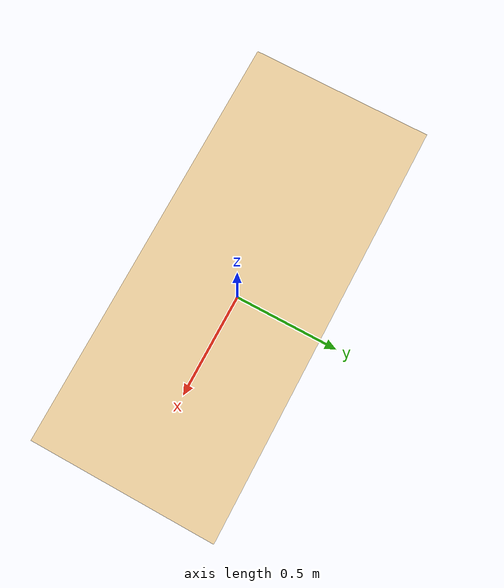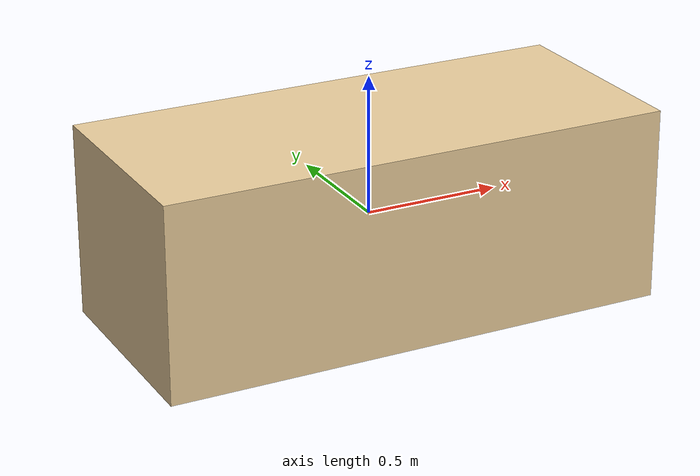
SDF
<?xml version='1.0'?>
<sdf version='1.7'>
  <model name='Shelf_E_bottom'>
    <link name='link_12'>
      <collision name='link_12_Collision'>
        <geometry>
          <box>
            <size>1.85 0.8 0.7</size>
          </box>
        </geometry>
        <pose frame=''>0 0 0 0 -0 0</pose>
      </collision>
      <visual name='link_12_Visual'>
        <pose frame=''>0 0 0 0 -0 0</pose>
        <geometry>
          <box>
            <size>1.85 0.8 0.7</size>
          </box>
        </geometry>
        <material>
          <script>
            <uri>file://media/materials/scripts/gazebo.material</uri>
            <name>Gazebo/Grey</name>
          </script>
          <ambient>0.921569 0.807843 0.615686 1</ambient>
        </material>
        <meta>
          <layer>0</layer>
        </meta>
      </visual>
    </link>
    <static>0</static>
    <allow_auto_disable>1</allow_auto_disable>
  </model>
</sdf>
